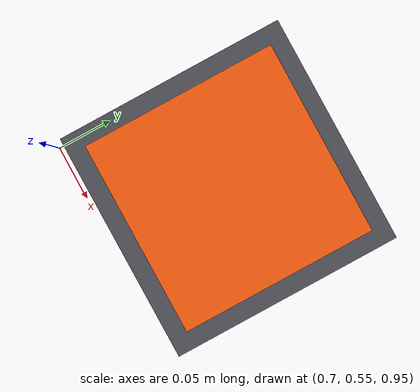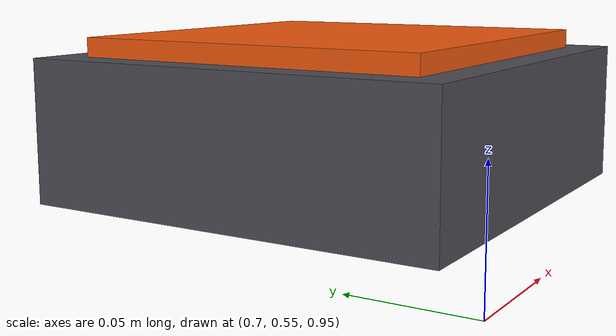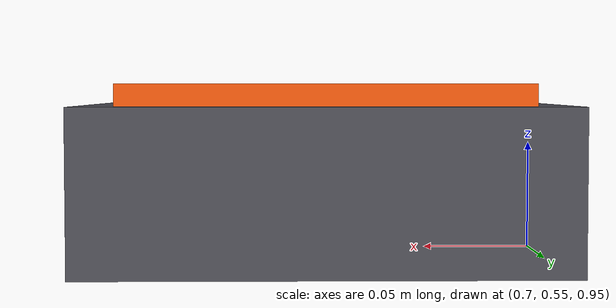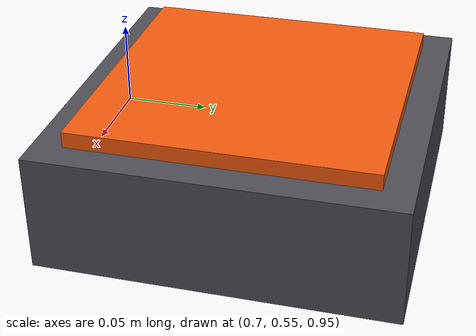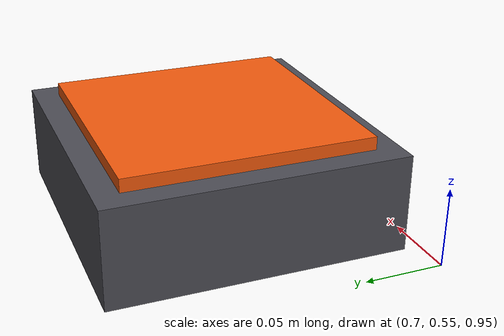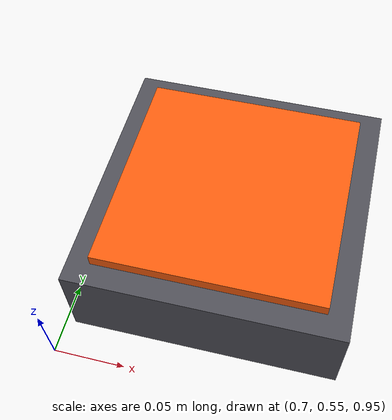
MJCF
<!-- Code generated by Claude -->
<mujoco>
  <worldbody>
    <body name="task_hotplate" pos="0.80 0.66 0.96">
      <geom name="task_hotplate_base" type="box" size="0.09 0.09 0.03" pos="0 0 0.03"
            rgba="0.30 0.30 0.33 1" friction="1.0 0.005 0.0001"/>
      <geom name="task_hotplate_top_plate" type="box" size="0.075 0.075 0.004" pos="0 0 0.064"
            rgba="0.95 0.35 0.05 1" friction="1.0 0.005 0.0001"/>
      <site name="hotplate_top" pos="0 0 0.068" size="0.004" rgba="1 0 0 0" group="4"/>
    </body>
  </worldbody>
</mujoco>
